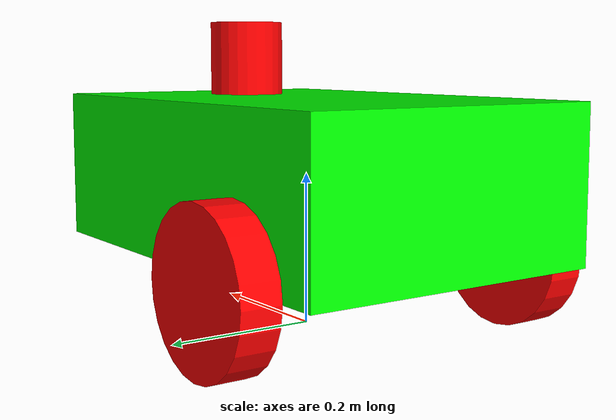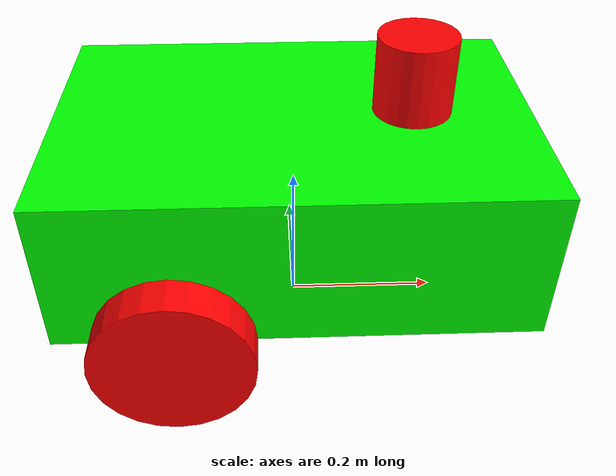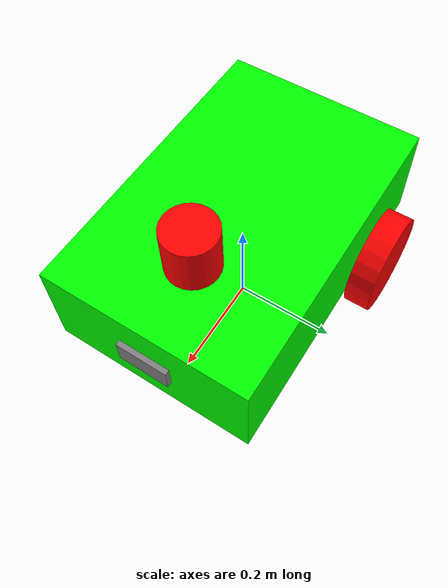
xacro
<?xml version="1.0"?>
<robot name="my_robot" xmlns:xacro="http://www.ros.org/wiki/xacro">

  <xacro:include filename="common_properties.xacro"/>
  <xacro:include filename="mobile_base.xacro"/>
  <xacro:include filename="mobile_base_gazebo.xacro"/>
  <xacro:include filename="camera.xacro"/>
  <xacro:include filename="lidar_sensor.xacro"/>

</robot>

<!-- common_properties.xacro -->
<robot name="my_robot"  xmlns:xacro="http://ros.org/wiki/xacro">

<material name="orange">
  <color rgba="1 0.647 0 1"/>
</material>

<material name="green">
  <color rgba="0 1 0 1"/>
</material>

<material name="red">
  <color rgba="1 0 0 1"/>
</material>

<material name="black">
  <color rgba="0 0 0 1"/>
</material>

 <material name="yellow">
        <color rgba="1.0 1.0 0.0 1.0" />
 </material>

<material name="grey">
  <color rgba="0.5 0.5 0.5 1.0"/>
</material>

  <xacro:macro name="box_inertial" params="m l w h xyz rpy">
    <inertial>
      <origin xyz="${xyz}" rpy="${rpy}"/>
      <mass value="${m}"/>
      <inertia ixx="${(1/12) * (m) * (h*h + l*l)}" ixy="0" ixz="0"
               iyy="${(1/12) * (m) * (w*w + l*l)}" iyz="0"
               izz="${(1/12) * (m) * (w*w + h*h)}"/>
       </inertial>
  </xacro:macro>

  <xacro:macro name="cylinder_inertial" params="m r h xyz rpy">
    <inertial>
      <origin xyz="${xyz}" rpy="${rpy}"/>
      <mass value="${m}"/>
      <inertia ixx="${(1/12) * (m) * (3*r*r + h*h)}" ixy="0" ixz="0"
               iyy="${(1/12) * (m) * (3*r*r + h*h)}" iyz="0"
               izz="${(1/2) * (m) * r*r}"/>
    </inertial>
  </xacro:macro>

  <xacro:macro name="sphere_inertial" params="m r xyz rpy">
    <inertial>
      <origin xyz="${xyz}" rpy="${rpy}"/>
      <mass value="${m}"/>
      <inertia ixx="${(2/5) * m * r * r}" ixy="0" ixz="0"
               iyy="${(2/5) * m * r * r}" iyz="0"
               izz="${(2/5) * m * r * r}"/>
    </inertial>

  </xacro:macro>

</robot>

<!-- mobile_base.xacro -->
<robot name="my_robot"  xmlns:xacro="http://ros.org/wiki/xacro">

 <xacro:property name="base_length" value="0.6"/>
 <xacro:property name="base_width" value="0.4"/>
 <xacro:property name="base_height" value="0.2"/>
 <xacro:property name="wheel_radius" value="0.1"/>
 <xacro:property name="wheel_length" value="0.05"/>

<!--base_footprint-->
 <link name="base_footprint"/>

<!-- Define the wheel macro first -->
<xacro:macro name="wheel" params="prefix">
  <link name="${prefix}_wheel">
    <visual>
        <geometry>
            <cylinder radius="${wheel_radius}" length="${wheel_length}"/>
        </geometry>
        <origin xyz="0 0 0" rpy="${pi/2} 0 0"/>
        <material name="red"/>
    </visual>
    <collision>
        <geometry>
            <cylinder radius="${wheel_radius}" length="${wheel_length}"/>
        </geometry>
        <origin xyz="0 0 0" rpy="${pi/2} 0 0"/>
    </collision>
    <xacro:cylinder_inertial m="1.0" r="${2*wheel_radius}" h="${2*wheel_length}"
                        xyz="0 0 ${wheel_length/2}" rpy="0 0 0"/>
  </link>
</xacro:macro>

 <!-- Now use the wheel macro -->
 <xacro:wheel prefix="right"/>
 <xacro:wheel prefix="left"/>

 <!--base_link-->
  <link name="base_link">
    <visual>
        <geometry>
            <box size="${base_length} ${base_width} ${base_height}"/>
        </geometry>
        <origin xyz="0 0 ${base_height/2}" rpy="0 0 0"/>
        <material name="green"/>
    </visual>
    <collision>
        <geometry>
            <box size="${base_length} ${base_width} ${base_height}"/>
        </geometry>
        <origin xyz="0 0 ${base_height/2}" rpy="0 0 0"/>
    </collision>
    <xacro:box_inertial m="5.0" l="${2*base_length}" w="${2*base_width}" h="${2*base_height}"
                        xyz="0 0 ${base_height/2}" rpy="0 0 0"/>
  </link>

  <joint name="base_footprint_joint" type="fixed">
    <parent link="base_footprint"/>
    <child link="base_link"/>
    <origin xyz="0 0 0.1" rpy="0 0 0"/>
  </joint>

  <!-- right wheel -->
  <joint name="right_wheel_joint" type="continuous">
    <parent link="base_link"/>
    <child link="right_wheel"/>
    <origin xyz="${-base_length/4.0} -0.225 0" rpy="0 0 0"/>
    <axis xyz="0 1 0"/>
  </joint>

  <!-- left wheel -->
  <joint name="left_wheel_joint" type="continuous">
    <parent link="base_link"/>
    <child link="left_wheel"/>
    <origin xyz="${-base_length/4.0} 0.225 0" rpy="0 0 0"/>
    <axis xyz="0 1 0"/>
  </joint>

    <!-- caster wheel-->
    <link name="caster_wheel">
      <visual>
        <geometry>
          <sphere radius="0.05"/>
        </geometry>
        <origin xyz="0 0 0" rpy="0 0 0"/>
        <material name="black"/>
      </visual>
      <collision>
        <geometry>
          <sphere radius="0.05"/>
        </geometry>
        <origin xyz="0 0 0" rpy="0 0 0"/>
      </collision>
      <xacro:sphere_inertial m="0.5" r="${2*0.05}" xyz="0 0 0" rpy="0 0 0"/>
    </link>

  <joint name="caster_wheel_joint" type="fixed">
    <parent link="base_link"/>
    <child link="caster_wheel"/>
    <origin xyz="0.15 0 -0.05" rpy="0 0 0"/>
  </joint>

</robot>

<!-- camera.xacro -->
<robot xmlns:xacro="http://www.ros.org/wiki/xacro">

    <xacro:property name="camera_length" value="0.01" />
    <xacro:property name="camera_width" value="0.1" />
    <xacro:property name="camera_height" value="0.05" />

    <link name="camera_link">
        <visual>
            <geometry>
                <box size="${camera_length} ${camera_width} ${camera_height}" />
            </geometry>
            <material name="grey" />
        </visual>
        <collision>
            <geometry>
                <box size="${camera_length} ${camera_width} ${camera_height}" />
            </geometry>
        </collision>
        <xacro:box_inertial m="0.1" l="${camera_length}" w="${camera_width}" h="${camera_height}"
                           xyz="0 0 0" rpy="0 0 0" />
    </link>

    <joint name="base_camera_joint" type="fixed">
        <parent link="base_link" />
        <child link="camera_link" />
        <origin xyz="${(base_length + camera_length) / 2.0} 0 ${base_height / 2.0}" rpy="0 0 0" />
    </joint>

    <link name="camera_link_optical">
    </link>

    <joint name="camera_optical_joint" type="fixed">
        <!-- these values have to be these values otherwise the gazebo camera
            image won't be aligned properly with the frame it is supposedly
            originating from -->
        <origin xyz="0 0 0" rpy="${-pi/2} 0 ${-pi/2}"/>
        <parent link="camera_link"/>
        <child link="camera_link_optical"/>
    </joint>

    <gazebo reference="camera_link">
        <material>Gazebo/Red</material>
        <sensor name="camera_sensor" type="camera">
            <pose>0 0 0 0 0 0</pose>
            <visualize>true</visualize>
            <update_rate>10.0</update_rate>
            <plugin name="camera_controller" filename="libgazebo_ros_camera.so">
                <frame_name>camera_link_optical</frame_name>
            </plugin>
        </sensor>
    </gazebo>

</robot>

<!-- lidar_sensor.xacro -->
<robot xmlns:xacro="http://www.ros.org/wiki/xacro">

    <!-- Add your lidar sensor definition here -->
    <link name="lidar_link">
        <visual>
            <geometry>
                <cylinder radius="0.05" length="0.1" />
            </geometry>
            <material name="red" />
        </visual>
        <origin xyz="0 0 0" rpy="0 0 0"/>
        <collision>
            <geometry>
                <cylinder radius="0.05" length="0.1" />
            </geometry>
        </collision>
        <xacro:box_inertial m="0.1" l="0.1" w="0.1" h="0.1"
                           xyz="0 0 0" rpy="0 0 0" />
    </link>

    <joint name="base_lidar_joint" type="fixed">
        <parent link="base_link" />
        <child link="lidar_link" />
        <!-- Fixed the syntax error: added missing closing parenthesis -->
        <origin xyz="${base_length/4.0} 0 ${base_height + 0.05}" rpy="0 0 0" />
    </joint>

    <!-- Gazebo plugin for RPLiDAR A1 -->
    <gazebo reference="lidar_link">
        <material>Gazebo/Red</material>
        <sensor type="ray" name="rplidar_a1_sensor">
            <pose>0 0 0 0 0 0</pose>
            <visualize>true</visualize>
            <update_rate>10</update_rate>
            <ray>
                <scan>
                    <horizontal>
                        <!-- RPLiDAR A1 specifications -->
                        <samples>360</samples>
                        <resolution>1</resolution>
                        <min_angle>-3.141592654</min_angle>
                        <max_angle>3.141592654</max_angle>
                    </horizontal>
                </scan>
                <range>
                    <!-- RPLiDAR A1 range specifications -->
                    <min>0.15</min>
                    <max>12.0</max>
                    <resolution>0.01</resolution>
                </range>
                <noise>
                    <!-- Realistic noise for RPLiDAR A1 -->
                    <type>gaussian</type>
                    <mean>0.0</mean>
                    <stddev>0.02</stddev>
                </noise>
            </ray>
            <plugin name="gazebo_ros_rplidar_a1_controller" filename="libgazebo_ros_laser.so">
                <topicName>/scan</topicName>
                <frameName>lidar_link</frameName>
            </plugin>
        </sensor>
    </gazebo>

</robot>
